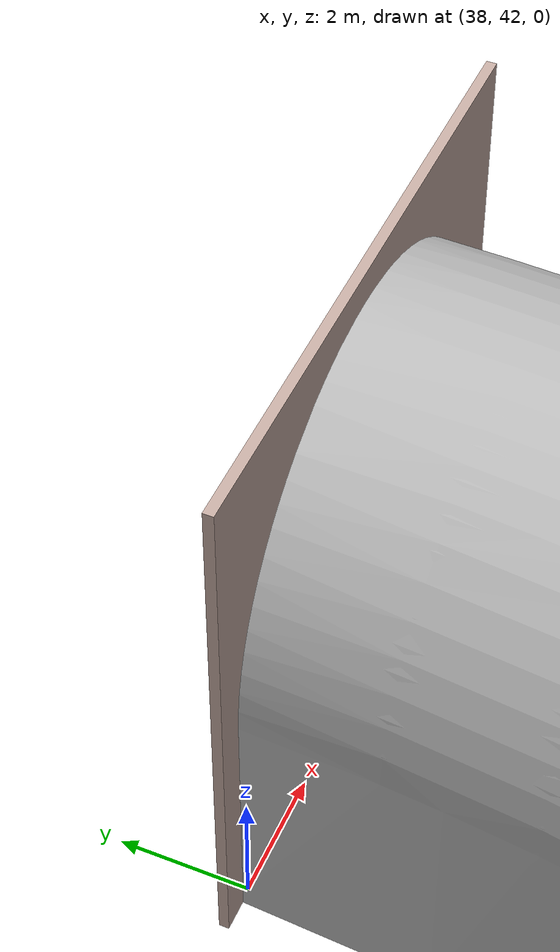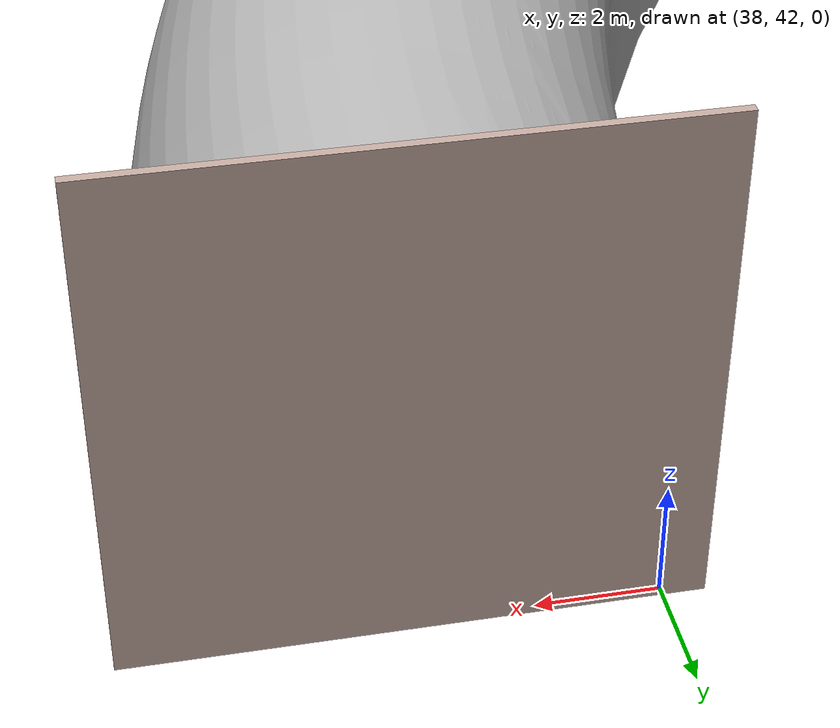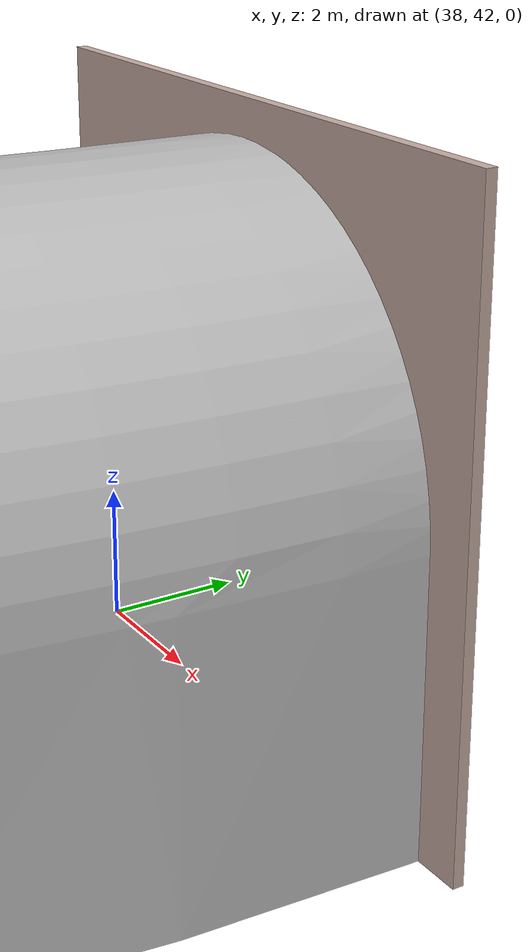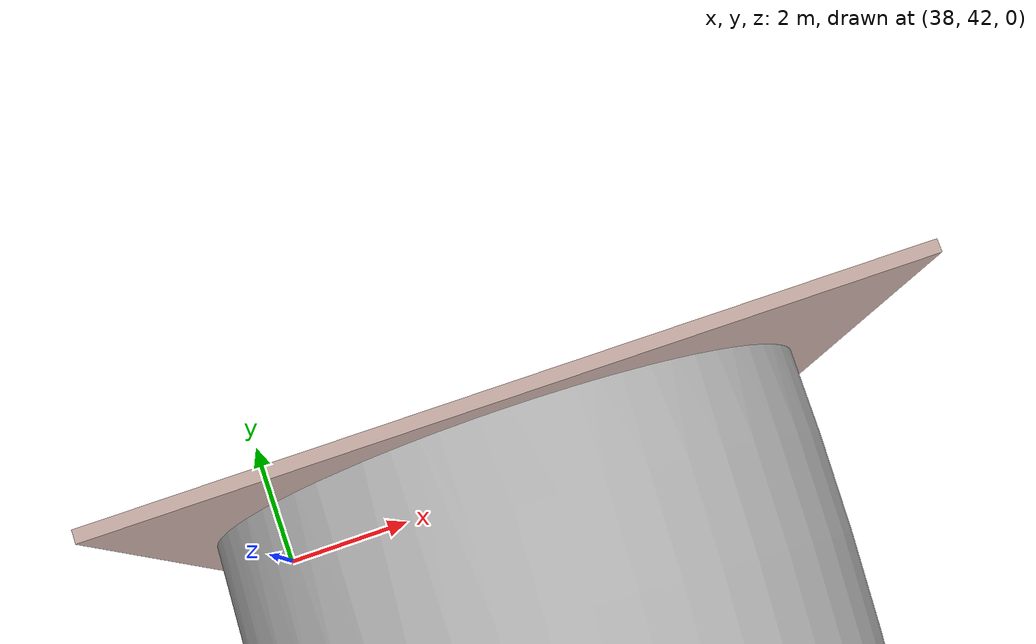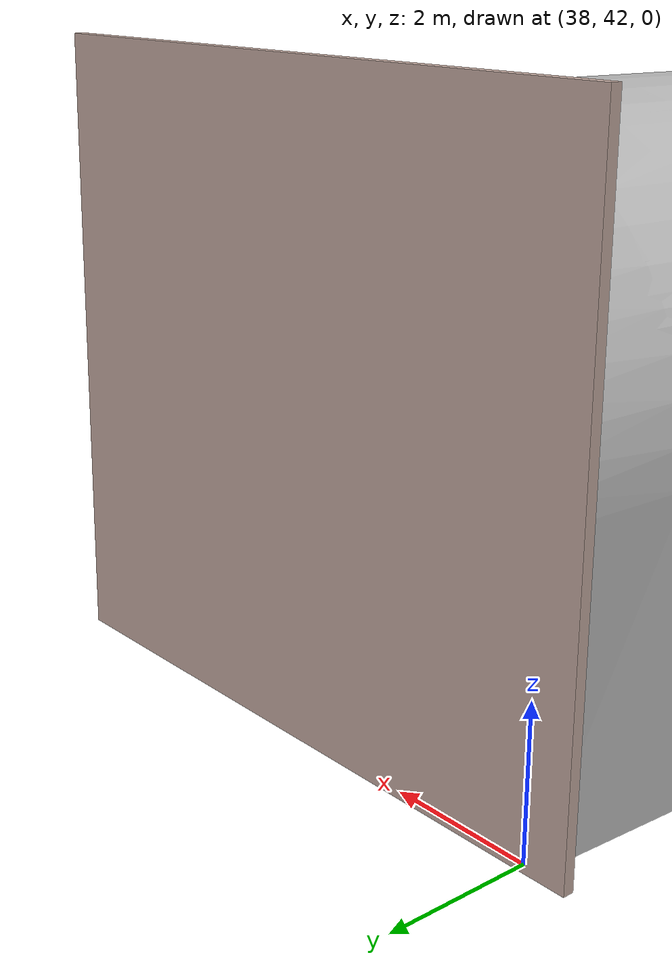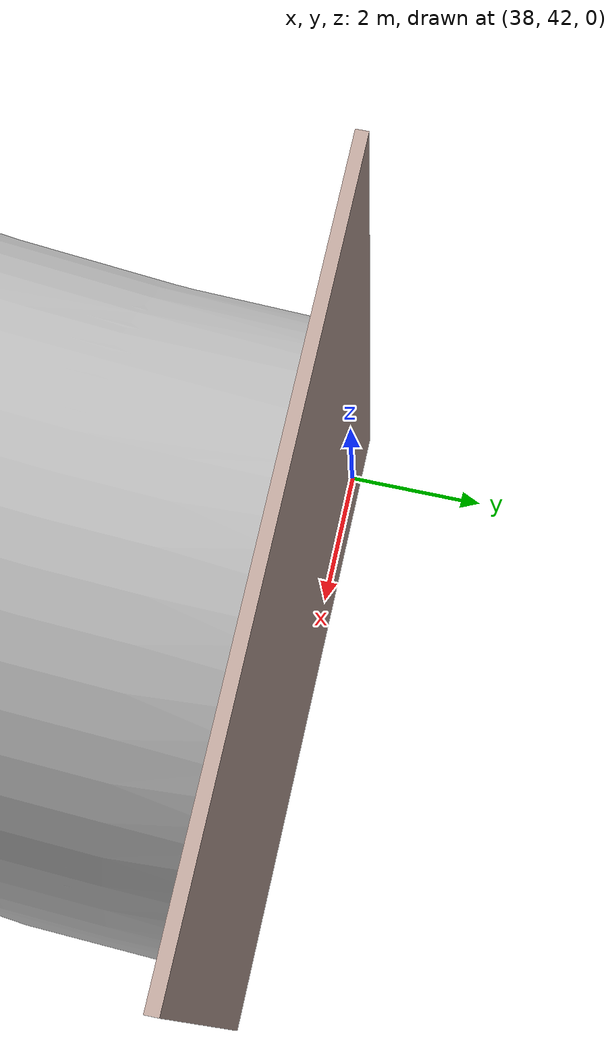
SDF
<sdf version="1.7">
 <world name="default">
  <light name="sun" type="directional">
   <pose>0 0 10 0 -0 0</pose>
   <diffuse>0.8 0.8 0.8 1</diffuse>
   <specular>0.2 0.2 0.2 1</specular>
   <attenuation>
    <range>1000</range>
    <constant>0.9</constant>
    <linear>0.01</linear>
    <quadratic>0.001</quadratic>
   </attenuation>
   <direction>-0.5 0.1 -0.9</direction>
   <spot><inner_angle>0</inner_angle><outer_angle>0</outer_angle><falloff>0</falloff></spot>
  </light>
  <gravity>0 0 -9.8</gravity>
  <magnetic_field>6e-06 2.3e-05 -4.2e-05</magnetic_field>
  <atmosphere type="adiabatic"/>
  <physics type="ode">
   <max_step_size>0.001</max_step_size>
   <real_time_factor>1</real_time_factor>
   <real_time_update_rate>1000</real_time_update_rate>
  </physics>
  <scene><ambient>0.4 0.4 0.4 1</ambient><background>0.7 0.7 0.7 1</background><shadows>1</shadows></scene>
  <spherical_coordinates>
   <surface_model>EARTH_WGS84</surface_model>
   <latitude_deg>0</latitude_deg>
   <longitude_deg>0</longitude_deg>
   <elevation>0</elevation>
   <heading_deg>0</heading_deg>
  </spherical_coordinates>
  <model name="tunnel_c_shape">
   <static>1</static>
   <link name="tunnel_c_shape">
    <collision name="collision">
     <geometry>
      <mesh><scale>1 1 1</scale><uri>model://tunnel_c_shape/meshes/tunnel_c_shape.dae</uri></mesh>
     </geometry>
    </collision>
    <visual name="visual">
     <geometry>
      <mesh><scale>1 1 1</scale><uri>model://tunnel_c_shape/meshes/tunnel_c_shape.dae</uri></mesh>
     </geometry>
    </visual>
   </link>
   <pose>-0.5 0 0 0 -0 0</pose>
  </model>
  <model name="tunnel_wall">
   <pose>41.8806 34.5938 0 0 -0 1.5707</pose>
   <link name="Wall_0">
    <collision name="Wall_0_Collision">
     <geometry><box><size>9.15 0.15 8.5</size></box></geometry>
     <pose>0 0 4.25 0 -0 0</pose>
    </collision>
    <visual name="Wall_0_Visual">
     <pose>0 0 4.25 0 -0 0</pose>
     <geometry><box><size>9.15 0.15 8.5</size></box></geometry>
     <material>
      <script><uri>file://media/materials/scripts/gazebo.material</uri><name>Gazebo/Grey</name></script>
      <ambient>0.760784 0.662745 0.627451 1</ambient>
     </material>
     <meta><layer>0</layer></meta>
    </visual>
    <pose>7.4625 0 0 0 -0 1.5708</pose>
   </link>
   <static>1</static>
  </model>
 </world>
</sdf>
